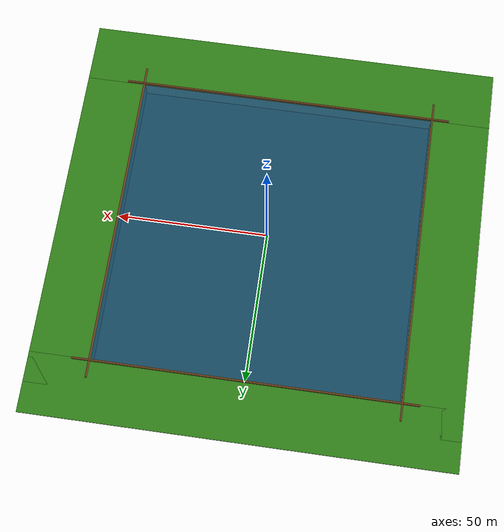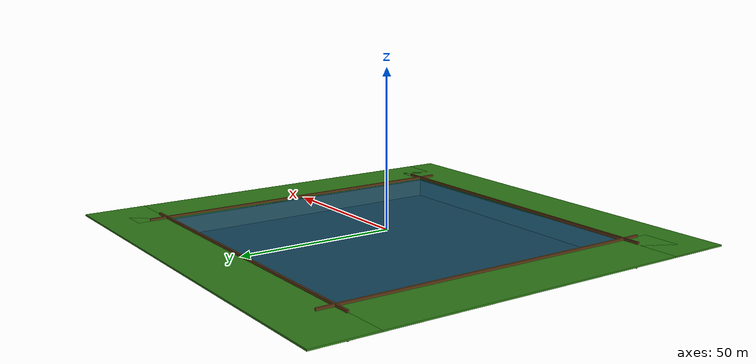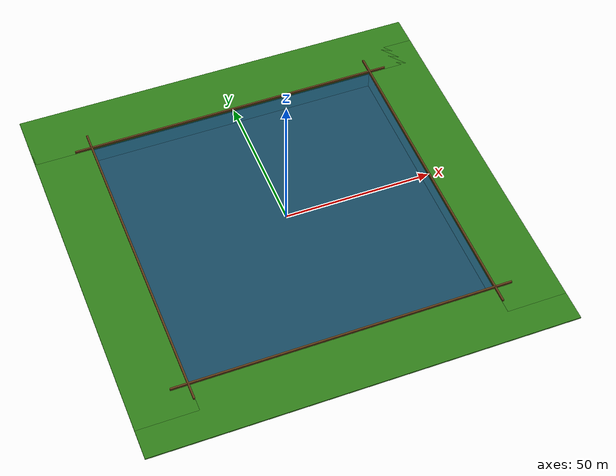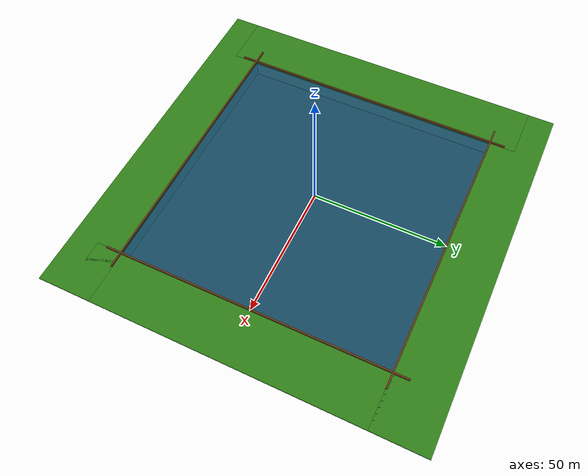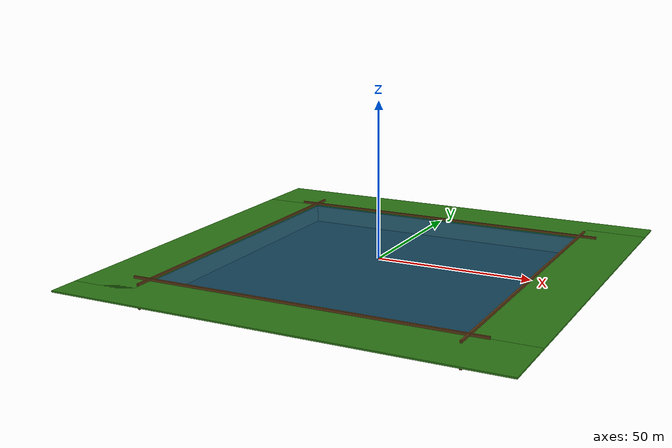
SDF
<?xml version="1.0"?>
<sdf version="1.7">
  <world name="industrial_sludge_pond">
    <gravity>0 0 -9.81</gravity>

    <physics name="default_physics" type="ignored">
      <max_step_size>0.001</max_step_size>
      <real_time_factor>1.0</real_time_factor>
    </physics>

    <!-- Gazebo Fortress server systems. -->
    <plugin filename="ignition-gazebo-physics-system"
            name="ignition::gazebo::systems::Physics"/>
    <plugin filename="ignition-gazebo-user-commands-system"
            name="ignition::gazebo::systems::UserCommands"/>
    <plugin filename="ignition-gazebo-scene-broadcaster-system"
            name="ignition::gazebo::systems::SceneBroadcaster"/>
  <!--
    Plugin for lidar
  -->
  <plugin filename="ignition-gazebo-sensors-system"
        name="ignition::gazebo::systems::Sensors">
  <render_engine>ogre2</render_engine>
  </plugin>
  <!--
    Wind environment for the USV.
    Mean wind speed: 3 m/s
    Mean direction: 45 deg in the world XY plane.
  -->
  <wind>
    <linear_velocity>2.121 2.121 0</linear_velocity>
  </wind>

  <plugin filename="ignition-gazebo-wind-effects-system"
          name="gz::sim::systems::WindEffects">

    <!-- Scale factor used by Gazebo's approximate wind-force model. -->
    <force_approximation_scaling_factor>0.05</force_approximation_scaling_factor>

    <!-- Horizontal wind-speed variation. -->
    <horizontal>

      <magnitude>
        <time_for_rise>5</time_for_rise>

        <sin>
          <amplitude_percent>0.05</amplitude_percent>
          <period>60</period>
        </sin>

        <noise type="gaussian">
          <mean>0</mean>
          <stddev>0.0002</stddev>
        </noise>
      </magnitude>

      <direction>
        <time_for_rise>10</time_for_rise>

        <sin>
          <amplitude>3</amplitude>
          <period>30</period>
        </sin>

        <noise type="gaussian">
          <mean>0</mean>
          <stddev>0.01</stddev>
        </noise>
      </direction>

    </horizontal>

    <!-- No intentional vertical wind; only a very small disturbance. -->
    <vertical>
      <noise type="gaussian">
        <mean>0</mean>
        <stddev>0.001</stddev>
      </noise>
    </vertical>

  </plugin>

    <!-- Apply external force / torque to links -->
    <plugin filename="ignition-gazebo-apply-link-wrench-system"
            name="ignition::gazebo::systems::ApplyLinkWrench"/>

    <!-- Physical buoyancy for the dynamically spawned USV. -->
    <plugin filename="ignition-gazebo-buoyancy-system"
            name="gz::sim::systems::Buoyancy">
      <!-- Fresh water below z=0; air above z=0. -->
      <graded_buoyancy>
        <default_density>1000</default_density>
        <density_change>
          <above_depth>0</above_depth>
          <density>1</density>
        </density_change>
      </graded_buoyancy>
      <!-- Restrict buoyancy to the dynamically spawned USV. -->
      <enable>usv</enable>
    </plugin>

    <scene>
      <ambient>0.60 0.65 0.70 1</ambient>
      <background>0.70 0.82 0.92 1</background>
      <shadows>true</shadows>
    </scene>

    <light name="sun" type="directional">
      <cast_shadows>true</cast_shadows>
      <pose>0 0 30 0 0 0</pose>
      <diffuse>0.95 0.92 0.85 1</diffuse>
      <specular>0.25 0.25 0.25 1</specular>
      <direction>-0.4 0.2 -1</direction>
    </light>

    <!--
      POND GEOMETRY
      Water footprint: x=[-50, 50], y=[-50, 50]
      Water surface: z=0; water bottom: z=-6
      Sludge: z=-6.25 to z=-6
    -->

    <!-- Flat structural bottom beneath the sludge. -->
    <model name="pond_bottom">
      <static>true</static>
      <pose>0 0 -6.75 0 0 0</pose>
      <link name="bottom_link">
        <collision name="collision">
          <geometry><box><size>100 100 1</size></box></geometry>
        </collision>
        <visual name="visual">
          <geometry><box><size>100 100 1</size></box></geometry>
          <material>
            <ambient>0.08 0.05 0.02 1</ambient>
            <diffuse>0.14 0.09 0.03 1</diffuse>
            <specular>0.01 0.01 0.01 1</specular>
          </material>
        </visual>
      </link>
    </model>

    <!-- Uniform 0.25 m sludge layer across the complete pond bottom. -->
    <model name="base_sludge">
      <static>true</static>
      <pose>0 0 -6.125 0 0 0</pose>
      <link name="sludge_link">
        <collision name="collision">
          <geometry><box><size>100 100 0.25</size></box></geometry>
        </collision>
        <visual name="visual">
          <geometry><box><size>100 100 0.25</size></box></geometry>
          <material>
            <ambient>0.10 0.045 0.012 1</ambient>
            <diffuse>0.20 0.085 0.020 1</diffuse>
            <specular>0.005 0.005 0.005 1</specular>
          </material>
        </visual>
      </link>
    </model>

    <!-- Irregular deposits protruding above the base sludge. -->

<!--
  Water geometry is visual-only.
  Physical buoyancy is provided by the world Buoyancy system.
-->    <model name="pond_water">
      <static>true</static>
      <pose>0 0 -3 0 0 0</pose>

      <link name="water_link">

        <visual name="water_visual">

          <geometry>
            <box>
              <size>100 100 6</size>
            </box>
          </geometry>

          <material>
            <!-- Base color -->
            <ambient>0.02 0.18 0.30 1.0</ambient>

            <!-- Main visible color -->
            <diffuse>0.05 0.45 0.65 1.0</diffuse>

            <!-- Small amount of reflection -->
            <specular>0.18 0.20 0.22 1.0</specular>

            <!-- Slight self illumination -->
            <emissive>0.00 0.05 0.08 1.0</emissive>
          </material>

          <!-- 0 = opaque, 1 = invisible -->
          <transparency>0.40</transparency>

          <cast_shadows>false</cast_shadows>

        </visual>

      </link>
    </model>

    <!--
      FOUR SLOPED SOIL BANKS
      Each incline runs from the pond floor near +/-50 m to ground level
      near +/-60 m. All bank centers remain outside the water footprint.
    -->
    <model name="north_bank">
      <static>true</static>
      <pose>0 50.3 -3 0 0 0</pose>
      <link name="link">
        <collision name="collision"><geometry><box><size>112 0.6 8</size></box></geometry></collision>
        <visual name="visual">
          <geometry><box><size>112 0.6 8</size></box></geometry>
          <material><ambient>0.19 0.11 0.04 1</ambient><diffuse>0.36 0.22 0.08 1</diffuse></material>
        </visual>
      </link>
    </model>

    <model name="south_bank">
      <static>true</static>
      <pose>0 -50.3 -3 0 0 0</pose>
      <link name="link">
        <collision name="collision"><geometry><box><size>112 0.6 8</size></box></geometry></collision>
        <visual name="visual">
          <geometry><box><size>112 0.6 8</size></box></geometry>
          <material><ambient>0.19 0.11 0.04 1</ambient><diffuse>0.36 0.22 0.08 1</diffuse></material>
        </visual>
      </link>
    </model>

    <model name="east_bank">
      <static>true</static>
      <pose>50.3 0 -3 0 0 0</pose>
      <link name="link">
        <collision name="collision"><geometry><box><size>0.6 112 8</size></box></geometry></collision>
        <visual name="visual">
          <geometry><box><size>0.6 112 8</size></box></geometry>
          <material><ambient>0.19 0.11 0.04 1</ambient><diffuse>0.36 0.22 0.08 1</diffuse></material>
        </visual>
      </link>
    </model>

    <model name="west_bank">
      <static>true</static>
      <pose>-50.3 0 -3 0 0 0</pose>
      <link name="link">
        <collision name="collision"><geometry><box><size>0.6 112 8</size></box></geometry></collision>
        <visual name="visual">
          <geometry><box><size>0.6 112 8</size></box></geometry>
          <material><ambient>0.19 0.11 0.04 1</ambient><diffuse>0.36 0.22 0.08 1</diffuse></material>
        </visual>
      </link>
    </model>

    <!--
      SURROUNDING GRASS TERRAIN
      Four independent strips leave the entire 100 x 100 m excavation open.
    -->
    <model name="north_grass_terrain">
      <static>true</static><pose>0 60 0 0 0 0</pose>
      <link name="link">
        <collision name="collision"><geometry><box><size>140 20 0.5</size></box></geometry></collision>
        <visual name="visual"><geometry><box><size>140 20 0.5</size></box></geometry><material><ambient>0.10 0.30 0.05 1</ambient><diffuse>0.18 0.48 0.09 1</diffuse></material></visual>
      </link>
    </model>

    <model name="south_grass_terrain">
      <static>true</static><pose>0 -60 0 0 0 0</pose>
      <link name="link">
        <collision name="collision"><geometry><box><size>140 20 0.5</size></box></geometry></collision>
        <visual name="visual"><geometry><box><size>140 20 0.5</size></box></geometry><material><ambient>0.10 0.30 0.05 1</ambient><diffuse>0.18 0.48 0.09 1</diffuse></material></visual>
      </link>
    </model>

    <model name="east_grass_terrain">
      <static>true</static><pose>60 0 0 0 0 0</pose>
      <link name="link">
        <collision name="collision"><geometry><box><size>20 120 0.5</size></box></geometry></collision>
        <visual name="visual"><geometry><box><size>20 120 0.5</size></box></geometry><material><ambient>0.10 0.30 0.05 1</ambient><diffuse>0.18 0.48 0.09 1</diffuse></material></visual>
      </link>
    </model>

    <model name="west_grass_terrain">
      <static>true</static><pose>-60 0 0 0 0 0</pose>
      <link name="link">
        <collision name="collision"><geometry><box><size>20 120 0.5</size></box></geometry></collision>
        <visual name="visual"><geometry><box><size>20 120 0.5</size></box></geometry><material><ambient>0.10 0.30 0.05 1</ambient><diffuse>0.18 0.48 0.09 1</diffuse></material></visual>
      </link>
    </model>

    <!-- Small south-side starting dock extending over the water. -->

    <!-- Lightweight static navigation obstacles. -->

  </world>
</sdf>
